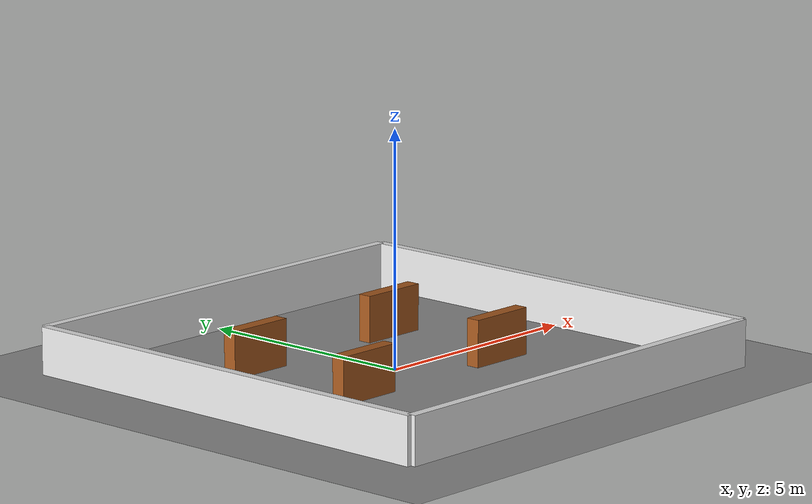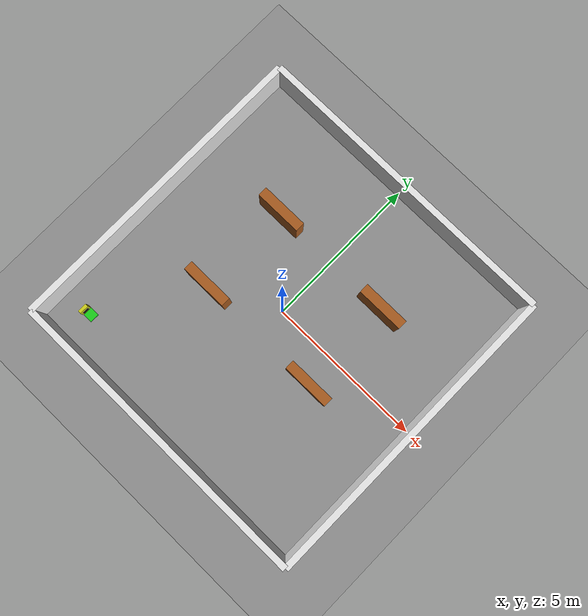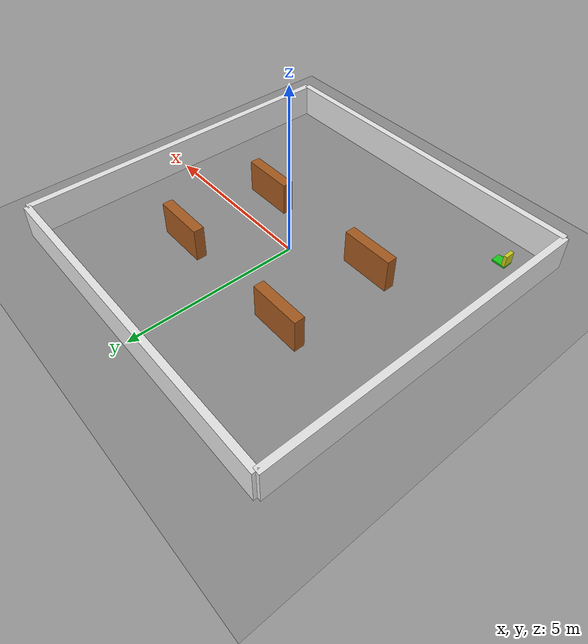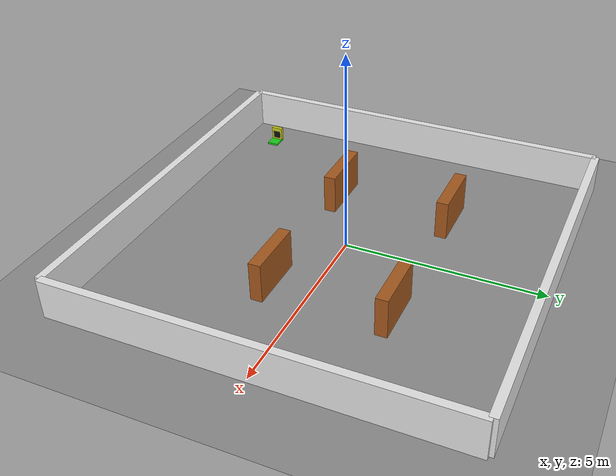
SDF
<?xml version='1.0' encoding='utf-8'?>
<sdf version="1.9">
  <world name="amr_world">
    <physics name="1ms" type="ignored">
      <max_step_size>0.001</max_step_size>
      <real_time_factor>1.0</real_time_factor>
      <real_time_update_rate>1000.0</real_time_update_rate>
    </physics>
    <plugin filename="gz-sim-physics-system" name="gz::sim::systems::Physics" />
    <plugin filename="gz-sim-user-commands-system" name="gz::sim::systems::UserCommands" />
    <plugin filename="gz-sim-scene-broadcaster-system" name="gz::sim::systems::SceneBroadcaster" />
    <plugin filename="gz-sim-sensors-system" name="gz::sim::systems::Sensors">
      <render_engine>ogre2</render_engine>
    </plugin>
    <plugin filename="gz-sim-imu-system" name="gz::sim::systems::Imu" />
    <scene>
      <ambient>0.4 0.4 0.4 1</ambient>
      <background>0.7 0.7 0.7 1</background>
      <shadows>true</shadows>
    </scene>
    <light type="directional" name="sun">
      <cast_shadows>true</cast_shadows>
      <pose>0 0 10 0 0 0</pose>
      <diffuse>0.8 0.8 0.8 1</diffuse>
      <specular>0.2 0.2 0.2 1</specular>
      <direction>-0.5 0.1 -0.9</direction>
    </light>
    <model name="ground_plane">
      <static>true</static>
      <link name="link">
        <collision name="collision">
          <geometry>
            <plane>
              <normal>0 0 1</normal>
              <size>100 100</size>
            </plane>
          </geometry>
        </collision>
        <visual name="visual">
          <cast_shadows>false</cast_shadows>
          <geometry>
            <plane>
              <normal>0 0 1</normal>
              <size>100 100</size>
            </plane>
          </geometry>
          <material>
            <ambient>0.45 0.45 0.45 1</ambient>
            <diffuse>0.55 0.55 0.55 1</diffuse>
          </material>
        </visual>
      </link>
    </model>
    <model name="wall_north">
      <static>true</static>
      <pose>0 5 0.5 0 0 0</pose>
      <link name="link">
        <collision name="col">
          <geometry>
            <box>
              <size>10 0.2 1</size>
            </box>
          </geometry>
        </collision>
        <visual name="vis">
          <geometry>
            <box>
              <size>10 0.2 1</size>
            </box>
          </geometry>
          <material>
            <ambient>0.8 0.8 0.8 1</ambient>
            <diffuse>0.9 0.9 0.9 1</diffuse>
          </material>
        </visual>
      </link>
    </model>
    <model name="wall_south">
      <static>true</static>
      <pose>0 -5 0.5 0 0 0</pose>
      <link name="link">
        <collision name="col">
          <geometry>
            <box>
              <size>10 0.2 1</size>
            </box>
          </geometry>
        </collision>
        <visual name="vis">
          <geometry>
            <box>
              <size>10 0.2 1</size>
            </box>
          </geometry>
          <material>
            <ambient>0.8 0.8 0.8 1</ambient>
            <diffuse>0.9 0.9 0.9 1</diffuse>
          </material>
        </visual>
      </link>
    </model>
    <model name="wall_east">
      <static>true</static>
      <pose>5 0 0.5 0 0 1.5707963</pose>
      <link name="link">
        <collision name="col">
          <geometry>
            <box>
              <size>10 0.2 1</size>
            </box>
          </geometry>
        </collision>
        <visual name="vis">
          <geometry>
            <box>
              <size>10 0.2 1</size>
            </box>
          </geometry>
          <material>
            <ambient>0.8 0.8 0.8 1</ambient>
            <diffuse>0.9 0.9 0.9 1</diffuse>
          </material>
        </visual>
      </link>
    </model>
    <model name="wall_west">
      <static>true</static>
      <pose>-5 0 0.5 0 0 1.5707963</pose>
      <link name="link">
        <collision name="col">
          <geometry>
            <box>
              <size>10 0.2 1</size>
            </box>
          </geometry>
        </collision>
        <visual name="vis">
          <geometry>
            <box>
              <size>10 0.2 1</size>
            </box>
          </geometry>
          <material>
            <ambient>0.8 0.8 0.8 1</ambient>
            <diffuse>0.9 0.9 0.9 1</diffuse>
          </material>
        </visual>
      </link>
    </model>
    <model name="shelf_1">
      <static>true</static>
      <pose>-2 2 0.5 0 0 0</pose>
      <link name="link">
        <collision name="col">
          <geometry>
            <box>
              <size>1.5 0.3 1</size>
            </box>
          </geometry>
        </collision>
        <visual name="vis">
          <geometry>
            <box>
              <size>1.5 0.3 1</size>
            </box>
          </geometry>
          <material>
            <ambient>0.45 0.25 0.1 1</ambient>
            <diffuse>0.65 0.35 0.12 1</diffuse>
          </material>
        </visual>
      </link>
    </model>
    <model name="shelf_2">
      <static>true</static>
      <pose>-2 -1 0.5 0 0 0</pose>
      <link name="link">
        <collision name="col">
          <geometry>
            <box>
              <size>1.5 0.3 1</size>
            </box>
          </geometry>
        </collision>
        <visual name="vis">
          <geometry>
            <box>
              <size>1.5 0.3 1</size>
            </box>
          </geometry>
          <material>
            <ambient>0.45 0.25 0.1 1</ambient>
            <diffuse>0.65 0.35 0.12 1</diffuse>
          </material>
        </visual>
      </link>
    </model>
    <model name="shelf_3">
      <static>true</static>
      <pose>2 2 0.5 0 0 0</pose>
      <link name="link">
        <collision name="col">
          <geometry>
            <box>
              <size>1.5 0.3 1</size>
            </box>
          </geometry>
        </collision>
        <visual name="vis">
          <geometry>
            <box>
              <size>1.5 0.3 1</size>
            </box>
          </geometry>
          <material>
            <ambient>0.45 0.25 0.1 1</ambient>
            <diffuse>0.65 0.35 0.12 1</diffuse>
          </material>
        </visual>
      </link>
    </model>
    <model name="shelf_4">
      <static>true</static>
      <pose>2 -1 0.5 0 0 0</pose>
      <link name="link">
        <collision name="col">
          <geometry>
            <box>
              <size>1.5 0.3 1</size>
            </box>
          </geometry>
        </collision>
        <visual name="vis">
          <geometry>
            <box>
              <size>1.5 0.3 1</size>
            </box>
          </geometry>
          <material>
            <ambient>0.45 0.25 0.1 1</ambient>
            <diffuse>0.65 0.35 0.12 1</diffuse>
          </material>
        </visual>
      </link>
    </model>
    <include>
      <uri>model://aruco_dock</uri>
      <pose>-4 -4 0 0 0 0</pose>
    </include>
    <plugin filename="gz-sim-contact-system" name="gz::sim::systems::Contact" />
  </world>
</sdf>

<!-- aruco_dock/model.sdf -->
<sdf version="1.9">
  <model name="aruco_dock">
    <static>true</static>
    <link name="link">

      <!-- Green floor pad -->
      <visual name="base">
        <pose>0 0 0.025 0 0 0</pose>
        <geometry><box><size>0.4 0.3 0.05</size></box></geometry>
        <material>
          <ambient>0.1 0.8 0.1 1</ambient>
          <diffuse>0.1 0.8 0.1 1</diffuse>
        </material>
      </visual>

      <!-- Yellow back wall (robot backs toward it) -->
      <collision name="col_wall">
        <pose>-0.15 0 0.225 0 0 0</pose>
        <geometry><box><size>0.1 0.3 0.35</size></box></geometry>
      </collision>
      <visual name="wall">
        <pose>-0.15 0 0.225 0 0 0</pose>
        <geometry><box><size>0.1 0.3 0.35</size></box></geometry>
        <material>
          <ambient>0.8 0.8 0.1 1</ambient>
          <diffuse>0.8 0.8 0.1 1</diffuse>
        </material>
      </visual>

      <visual name="aruco_panel">
        <pose>-0.095 0 0.20 0 1.5708 0</pose>
        <geometry><box><size>0.20 0.20 0.001</size></box></geometry>
        <!-- The legacy texture script is not portable to Harmonic. Keep the
             panel geometry; visual marker texture is a later camera phase. -->
        <material>
          <ambient>0.05 0.05 0.05 1</ambient>
          <diffuse>0.05 0.05 0.05 1</diffuse>
        </material>
      </visual>

    </link>
  </model>
</sdf>
